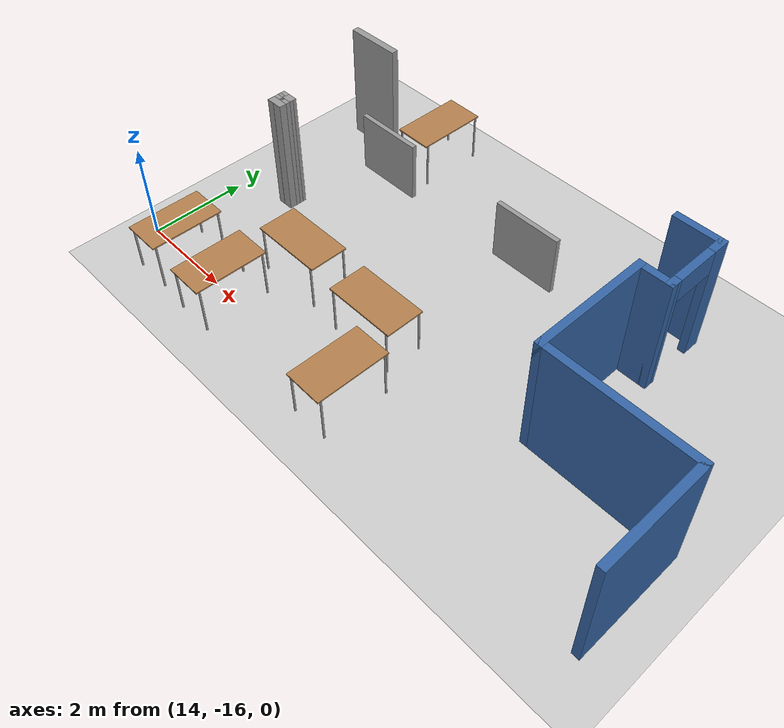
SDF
<sdf version="1.7">
 <world name="default">
  <model name="ground_plane">
   <static>1</static>
   <link name="link">
    <collision name="collision">
     <geometry><plane><normal>0 0 1</normal><size>100 100</size></plane></geometry>
     <surface>
      <contact><collide_bitmask>65535</collide_bitmask></contact>
      <friction><ode><mu>100</mu><mu2>50</mu2></ode></friction>
     </surface>
    </collision>
    <visual name="visual">
     <cast_shadows>0</cast_shadows>
     <geometry><plane><normal>0 0 1</normal><size>100 100</size></plane></geometry>
     <material>
      <script><uri>file://media/materials/scripts/gazebo.material</uri><name>Gazebo/Grey</name></script>
     </material>
    </visual>
   </link>
  </model>
  <model name="office_indoor_centered">
   <pose>8.45773 -9.64315 0 0 -0 0</pose>
   <link name="Wall_10">
    <collision name="Wall_10_Collision">
     <geometry><box><size>2.25 0.15 2.5</size></box></geometry>
     <pose>0 0 1.25 0 -0 0</pose>
    </collision>
    <visual name="Wall_10_Visual">
     <pose>0 0 1.25 0 -0 0</pose>
     <geometry><box><size>2.25 0.15 2.5</size></box></geometry>
     <material>
      <script><uri>file://media/materials/scripts/gazebo.material</uri><name>Gazebo/Grey</name></script>
      <ambient>0.203922 0.396078 0.643137 1</ambient>
     </material>
     <meta><layer>0</layer></meta>
    </visual>
    <pose>16.775 -5.85015 0 0 -0 -1.5708</pose>
   </link>
   <link name="Wall_107">
    <collision name="Wall_107_Collision">
     <geometry><box><size>0.391604 0.15 2.5</size></box></geometry>
     <pose>0 0 1.25 0 -0 0</pose>
    </collision>
    <visual name="Wall_107_Visual">
     <pose>0 0 1.25 0 -0 0</pose>
     <geometry><box><size>0.391604 0.15 2.5</size></box></geometry>
     <material>
      <script><uri>file://media/materials/scripts/gazebo.material</uri><name>Gazebo/Grey</name></script>
      <ambient>1 1 1 1</ambient>
     </material>
     <meta><layer>0</layer></meta>
    </visual>
    <pose>6.55713 -3.81389 0 0 -0 1.58855</pose>
   </link>
   <link name="Wall_108">
    <collision name="Wall_108_Collision">
     <geometry><box><size>0.352972 0.15 2.5</size></box></geometry>
     <pose>0 0 1.25 0 -0 0</pose>
    </collision>
    <visual name="Wall_108_Visual">
     <pose>0 0 1.25 0 -0 0</pose>
     <geometry><box><size>0.352972 0.15 2.5</size></box></geometry>
     <material>
      <script><uri>file://media/materials/scripts/gazebo.material</uri><name>Gazebo/Grey</name></script>
      <ambient>1 1 1 1</ambient>
     </material>
     <meta><layer>0</layer></meta>
    </visual>
    <pose>6.65648 -3.69239 0 0 -0 0.007042</pose>
   </link>
   <link name="Wall_109">
    <collision name="Wall_109_Collision">
     <geometry><box><size>0.388707 0.15 2.5</size></box></geometry>
     <pose>0 0 1.25 0 -0 0</pose>
    </collision>
    <visual name="Wall_109_Visual">
     <pose>0 0 1.25 0 -0 0</pose>
     <geometry><box><size>0.388707 0.15 2.5</size></box></geometry>
     <material>
      <script><uri>file://media/materials/scripts/gazebo.material</uri><name>Gazebo/Grey</name></script>
      <ambient>1 1 1 1</ambient>
     </material>
     <meta><layer>0</layer></meta>
    </visual>
    <pose>6.75796 -3.81103 0 0 -0 -1.5708</pose>
   </link>
   <link name="Wall_110">
    <collision name="Wall_110_Collision">
     <geometry><box><size>0.342967 0.15 2.5</size></box></geometry>
     <pose>0 0 1.25 0 -0 0</pose>
    </collision>
    <visual name="Wall_110_Visual">
     <pose>0 0 1.25 0 -0 0</pose>
     <geometry><box><size>0.342967 0.15 2.5</size></box></geometry>
     <material>
      <script><uri>file://media/materials/scripts/gazebo.material</uri><name>Gazebo/Grey</name></script>
      <ambient>1 1 1 1</ambient>
     </material>
     <meta><layer>0</layer></meta>
    </visual>
    <pose>6.66148 -3.93039 0 0 -0 3.14159</pose>
   </link>
   <link name="Wall_141">
    <collision name="Wall_141_Collision">
     <geometry><box><size>1.4496 0.1 1.3</size></box></geometry>
     <pose>0 0 0.65 0 -0 0</pose>
    </collision>
    <visual name="Wall_141_Visual">
     <pose>0 0 0.65 0 -0 0</pose>
     <geometry><box><size>1.4496 0.1 1.3</size></box></geometry>
     <material>
      <script><uri>file://media/materials/scripts/gazebo.material</uri><name>Gazebo/Grey</name></script>
      <ambient>1 1 1 1</ambient>
     </material>
     <meta><layer>0</layer></meta>
    </visual>
    <pose>11.2683 -1.93385 0 0 -0 3.14159</pose>
   </link>
   <link name="Wall_143">
    <collision name="Wall_143_Collision">
     <geometry><box><size>1.45037 0.1 1.3</size></box></geometry>
     <pose>0 0 0.65 0 -0 0</pose>
    </collision>
    <visual name="Wall_143_Visual">
     <pose>0 0 0.65 0 -0 0</pose>
     <geometry><box><size>1.45037 0.1 1.3</size></box></geometry>
     <material>
      <script><uri>file://media/materials/scripts/gazebo.material</uri><name>Gazebo/Grey</name></script>
      <ambient>1 1 1 1</ambient>
     </material>
     <meta><layer>0</layer></meta>
    </visual>
    <pose>7.57127 -1.94485 0 0 -0 0</pose>
   </link>
   <link name="Wall_5">
    <collision name="Wall_5_Collision">
     <geometry><box><size>1 0.15 2.5</size></box></geometry>
     <pose>0 0 1.25 0 -0 0</pose>
    </collision>
    <visual name="Wall_5_Visual">
     <pose>0 0 1.25 0 -0 0</pose>
     <geometry><box><size>1 0.15 2.5</size></box></geometry>
     <material>
      <script><uri>file://media/materials/scripts/gazebo.material</uri><name>Gazebo/Grey</name></script>
      <ambient>0.203922 0.396078 0.643137 1</ambient>
     </material>
     <meta><layer>0</layer></meta>
    </visual>
    <pose>14.1 -1.10015 0 0 -0 0</pose>
   </link>
   <link name="Wall_55">
    <collision name="Wall_55_Collision">
     <geometry><box><size>1.17933 0.15 2.5</size></box></geometry>
     <pose>0 0 1.25 0 -0 0</pose>
    </collision>
    <visual name="Wall_55_Visual">
     <pose>0 0 1.25 0 -0 0</pose>
     <geometry><box><size>1.17933 0.15 2.5</size></box></geometry>
     <material>
      <script><uri>file://media/materials/scripts/gazebo.material</uri><name>Gazebo/Grey</name></script>
      <ambient>1 1 1 1</ambient>
     </material>
     <meta><layer>0</layer></meta>
    </visual>
    <pose>6.36001 -1.19956 0 0 -0 0.005618</pose>
   </link>
   <link name="Wall_6">
    <pose>14.525 -1.77515 0 0 -0 -1.5708</pose>
    <visual name="Wall_6_Visual_0">
     <pose>-0.569607 0 1.25 0 -0 0</pose>
     <geometry><box><size>0.360786 0.15 2.5</size></box></geometry>
     <material>
      <script><uri>file://media/materials/scripts/gazebo.material</uri><name>Gazebo/Grey</name></script>
      <ambient>0.203922 0.396078 0.643137 1</ambient>
     </material>
     <meta><layer>0</layer></meta>
    </visual>
    <collision name="Wall_6_Collision_0">
     <geometry><box><size>0.360786 0.15 2.5</size></box></geometry>
     <pose>-0.569607 0 1.25 0 -0 0</pose>
    </collision>
    <visual name="Wall_6_Visual_1">
     <pose>0.630393 0 1.25 0 -0 0</pose>
     <geometry><box><size>0.239214 0.15 2.5</size></box></geometry>
     <material>
      <script><uri>file://media/materials/scripts/gazebo.material</uri><name>Gazebo/Grey</name></script>
      <ambient>0.203922 0.396078 0.643137 1</ambient>
     </material>
     <meta><layer>0</layer></meta>
    </visual>
    <collision name="Wall_6_Collision_1">
     <geometry><box><size>0.239214 0.15 2.5</size></box></geometry>
     <pose>0.630393 0 1.25 0 -0 0</pose>
    </collision>
    <visual name="Wall_6_Visual_2">
     <pose>0.060786 0 2.25 0 -0 0</pose>
     <geometry><box><size>0.9 0.15 0.5</size></box></geometry>
     <material>
      <script><uri>file://media/materials/scripts/gazebo.material</uri><name>Gazebo/Grey</name></script>
      <ambient>0.203922 0.396078 0.643137 1</ambient>
     </material>
     <meta><layer>0</layer></meta>
    </visual>
    <collision name="Wall_6_Collision_2">
     <geometry><box><size>0.9 0.15 0.5</size></box></geometry>
     <pose>0.060786 0 2.25 0 -0 0</pose>
    </collision>
   </link>
   <link name="Wall_7">
    <collision name="Wall_7_Collision">
     <geometry><box><size>0.75 0.15 2.5</size></box></geometry>
     <pose>0 0 1.25 0 -0 0</pose>
    </collision>
    <visual name="Wall_7_Visual">
     <pose>0 0 1.25 0 -0 0</pose>
     <geometry><box><size>0.75 0.15 2.5</size></box></geometry>
     <material>
      <script><uri>file://media/materials/scripts/gazebo.material</uri><name>Gazebo/Grey</name></script>
      <ambient>0.203922 0.396078 0.643137 1</ambient>
     </material>
     <meta><layer>0</layer></meta>
    </visual>
    <pose>14.225 -2.45015 0 0 -0 3.14159</pose>
   </link>
   <link name="Wall_8">
    <collision name="Wall_8_Collision">
     <geometry><box><size>2.5 0.15 2.5</size></box></geometry>
     <pose>0 0 1.25 0 -0 0</pose>
    </collision>
    <visual name="Wall_8_Visual">
     <pose>0 0 1.25 0 -0 0</pose>
     <geometry><box><size>2.5 0.15 2.5</size></box></geometry>
     <material>
      <script><uri>file://media/materials/scripts/gazebo.material</uri><name>Gazebo/Grey</name></script>
      <ambient>0.203922 0.396078 0.643137 1</ambient>
     </material>
     <meta><layer>0</layer></meta>
    </visual>
    <pose>13.925 -3.62515 0 0 -0 -1.5708</pose>
   </link>
   <link name="Wall_9">
    <collision name="Wall_9_Collision">
     <geometry><box><size>3 0.15 2.5</size></box></geometry>
     <pose>0 0 1.25 0 -0 0</pose>
    </collision>
    <visual name="Wall_9_Visual">
     <pose>0 0 1.25 0 -0 0</pose>
     <geometry><box><size>3 0.15 2.5</size></box></geometry>
     <material>
      <script><uri>file://media/materials/scripts/gazebo.material</uri><name>Gazebo/Grey</name></script>
      <ambient>0.203922 0.396078 0.643137 1</ambient>
     </material>
     <meta><layer>0</layer></meta>
    </visual>
    <pose>15.35 -4.80015 0 0 -0 0</pose>
   </link>
   <static>1</static>
  </model>
  <model name="table_10">
   <static>1</static>
   <link name="link">
    <collision name="surface">
     <pose>0 0 1 0 -0 0</pose>
     <geometry><box><size>1.5 0.8 0.03</size></box></geometry>
     <surface><friction><ode><mu>0.6</mu><mu2>0.6</mu2></ode></friction></surface>
    </collision>
    <visual name="visual1">
     <pose>0 0 1 0 -0 0</pose>
     <geometry><box><size>1.5 0.8 0.03</size></box></geometry>
     <material>
      <script><uri>file://media/materials/scripts/gazebo.material</uri><name>Gazebo/Wood</name></script>
     </material>
    </visual>
    <collision name="collision_front_left_leg">
     <pose>0.68 0.38 0.5 0 -0 0</pose>
     <geometry><cylinder><radius>0.02</radius><length>1</length></cylinder></geometry>
    </collision>
    <visual name="visual_front_left_leg">
     <pose>0.68 0.38 0.5 0 -0 0</pose>
     <geometry><cylinder><radius>0.02</radius><length>1</length></cylinder></geometry>
     <material>
      <script><uri>file://media/materials/scripts/gazebo.material</uri><name>Gazebo/Grey</name></script>
     </material>
    </visual>
    <collision name="collision_front_right_leg">
     <pose>0.68 -0.38 0.5 0 -0 0</pose>
     <geometry><cylinder><radius>0.02</radius><length>1</length></cylinder></geometry>
    </collision>
    <visual name="visual_front_right_leg">
     <pose>0.68 -0.38 0.5 0 -0 0</pose>
     <geometry><cylinder><radius>0.02</radius><length>1</length></cylinder></geometry>
     <material>
      <script><uri>file://media/materials/scripts/gazebo.material</uri><name>Gazebo/Grey</name></script>
     </material>
    </visual>
    <collision name="collision_back_right_leg">
     <pose>-0.68 -0.38 0.5 0 -0 0</pose>
     <geometry><cylinder><radius>0.02</radius><length>1</length></cylinder></geometry>
    </collision>
    <visual name="visual_back_right_leg">
     <pose>-0.68 -0.38 0.5 0 -0 0</pose>
     <geometry><cylinder><radius>0.02</radius><length>1</length></cylinder></geometry>
     <material>
      <script><uri>file://media/materials/scripts/gazebo.material</uri><name>Gazebo/Grey</name></script>
     </material>
    </visual>
    <collision name="collision_back_left_leg">
     <pose>-0.68 0.38 0.5 0 -0 0</pose>
     <geometry><cylinder><radius>0.02</radius><length>1</length></cylinder></geometry>
    </collision>
    <visual name="visual_back_left_leg">
     <pose>-0.68 0.38 0.5 0 -0 0</pose>
     <geometry><cylinder><radius>0.02</radius><length>1</length></cylinder></geometry>
     <material>
      <script><uri>file://media/materials/scripts/gazebo.material</uri><name>Gazebo/Grey</name></script>
     </material>
    </visual>
   </link>
   <pose>17.0157 -14.6568 0 0 -0 0</pose>
  </model>
  <model name="table_11">
   <static>1</static>
   <link name="link">
    <collision name="surface">
     <pose>0 0 1 0 -0 0</pose>
     <geometry><box><size>1.5 0.8 0.03</size></box></geometry>
     <surface><friction><ode><mu>0.6</mu><mu2>0.6</mu2></ode></friction></surface>
    </collision>
    <visual name="visual1">
     <pose>0 0 1 0 -0 0</pose>
     <geometry><box><size>1.5 0.8 0.03</size></box></geometry>
     <material>
      <script><uri>file://media/materials/scripts/gazebo.material</uri><name>Gazebo/Wood</name></script>
     </material>
    </visual>
    <collision name="collision_front_left_leg">
     <pose>0.68 0.38 0.5 0 -0 0</pose>
     <geometry><cylinder><radius>0.02</radius><length>1</length></cylinder></geometry>
    </collision>
    <visual name="visual_front_left_leg">
     <pose>0.68 0.38 0.5 0 -0 0</pose>
     <geometry><cylinder><radius>0.02</radius><length>1</length></cylinder></geometry>
     <material>
      <script><uri>file://media/materials/scripts/gazebo.material</uri><name>Gazebo/Grey</name></script>
     </material>
    </visual>
    <collision name="collision_front_right_leg">
     <pose>0.68 -0.38 0.5 0 -0 0</pose>
     <geometry><cylinder><radius>0.02</radius><length>1</length></cylinder></geometry>
    </collision>
    <visual name="visual_front_right_leg">
     <pose>0.68 -0.38 0.5 0 -0 0</pose>
     <geometry><cylinder><radius>0.02</radius><length>1</length></cylinder></geometry>
     <material>
      <script><uri>file://media/materials/scripts/gazebo.material</uri><name>Gazebo/Grey</name></script>
     </material>
    </visual>
    <collision name="collision_back_right_leg">
     <pose>-0.68 -0.38 0.5 0 -0 0</pose>
     <geometry><cylinder><radius>0.02</radius><length>1</length></cylinder></geometry>
    </collision>
    <visual name="visual_back_right_leg">
     <pose>-0.68 -0.38 0.5 0 -0 0</pose>
     <geometry><cylinder><radius>0.02</radius><length>1</length></cylinder></geometry>
     <material>
      <script><uri>file://media/materials/scripts/gazebo.material</uri><name>Gazebo/Grey</name></script>
     </material>
    </visual>
    <collision name="collision_back_left_leg">
     <pose>-0.68 0.38 0.5 0 -0 0</pose>
     <geometry><cylinder><radius>0.02</radius><length>1</length></cylinder></geometry>
    </collision>
    <visual name="visual_back_left_leg">
     <pose>-0.68 0.38 0.5 0 -0 0</pose>
     <geometry><cylinder><radius>0.02</radius><length>1</length></cylinder></geometry>
     <material>
      <script><uri>file://media/materials/scripts/gazebo.material</uri><name>Gazebo/Grey</name></script>
     </material>
    </visual>
   </link>
   <pose>19.0717 -14.7207 0 0 -0 0</pose>
  </model>
  <model name="table_26_clone_3">
   <static>1</static>
   <link name="link">
    <collision name="surface">
     <pose>0 0 1 0 -0 0</pose>
     <geometry><box><size>1.5 0.8 0.03</size></box></geometry>
     <surface><friction><ode><mu>0.6</mu><mu2>0.6</mu2></ode></friction></surface>
    </collision>
    <visual name="visual1">
     <pose>0 0 1 0 -0 0</pose>
     <geometry><box><size>1.5 0.8 0.03</size></box></geometry>
     <material>
      <script><uri>file://media/materials/scripts/gazebo.material</uri><name>Gazebo/Wood</name></script>
     </material>
    </visual>
    <collision name="collision_front_left_leg">
     <pose>0.68 0.38 0.5 0 -0 0</pose>
     <geometry><cylinder><radius>0.02</radius><length>1</length></cylinder></geometry>
    </collision>
    <visual name="visual_front_left_leg">
     <pose>0.68 0.38 0.5 0 -0 0</pose>
     <geometry><cylinder><radius>0.02</radius><length>1</length></cylinder></geometry>
     <material>
      <script><uri>file://media/materials/scripts/gazebo.material</uri><name>Gazebo/Grey</name></script>
     </material>
    </visual>
    <collision name="collision_front_right_leg">
     <pose>0.68 -0.38 0.5 0 -0 0</pose>
     <geometry><cylinder><radius>0.02</radius><length>1</length></cylinder></geometry>
    </collision>
    <visual name="visual_front_right_leg">
     <pose>0.68 -0.38 0.5 0 -0 0</pose>
     <geometry><cylinder><radius>0.02</radius><length>1</length></cylinder></geometry>
     <material>
      <script><uri>file://media/materials/scripts/gazebo.material</uri><name>Gazebo/Grey</name></script>
     </material>
    </visual>
    <collision name="collision_back_right_leg">
     <pose>-0.68 -0.38 0.5 0 -0 0</pose>
     <geometry><cylinder><radius>0.02</radius><length>1</length></cylinder></geometry>
    </collision>
    <visual name="visual_back_right_leg">
     <pose>-0.68 -0.38 0.5 0 -0 0</pose>
     <geometry><cylinder><radius>0.02</radius><length>1</length></cylinder></geometry>
     <material>
      <script><uri>file://media/materials/scripts/gazebo.material</uri><name>Gazebo/Grey</name></script>
     </material>
    </visual>
    <collision name="collision_back_left_leg">
     <pose>-0.68 0.38 0.5 0 -0 0</pose>
     <geometry><cylinder><radius>0.02</radius><length>1</length></cylinder></geometry>
    </collision>
    <visual name="visual_back_left_leg">
     <pose>-0.68 0.38 0.5 0 -0 0</pose>
     <geometry><cylinder><radius>0.02</radius><length>1</length></cylinder></geometry>
     <material>
      <script><uri>file://media/materials/scripts/gazebo.material</uri><name>Gazebo/Grey</name></script>
     </material>
    </visual>
   </link>
   <pose>16.27 -10.4153 0 0 0 -1.57974</pose>
  </model>
  <model name="table_26_clone_6">
   <static>1</static>
   <link name="link">
    <collision name="surface">
     <pose>0 0 1 0 -0 0</pose>
     <geometry><box><size>1.5 0.8 0.03</size></box></geometry>
     <surface><friction><ode><mu>0.6</mu><mu2>0.6</mu2></ode></friction></surface>
    </collision>
    <visual name="visual1">
     <pose>0 0 1 0 -0 0</pose>
     <geometry><box><size>1.5 0.8 0.03</size></box></geometry>
     <material>
      <script><uri>file://media/materials/scripts/gazebo.material</uri><name>Gazebo/Wood</name></script>
     </material>
    </visual>
    <collision name="collision_front_left_leg">
     <pose>0.68 0.38 0.5 0 -0 0</pose>
     <geometry><cylinder><radius>0.02</radius><length>1</length></cylinder></geometry>
    </collision>
    <visual name="visual_front_left_leg">
     <pose>0.68 0.38 0.5 0 -0 0</pose>
     <geometry><cylinder><radius>0.02</radius><length>1</length></cylinder></geometry>
     <material>
      <script><uri>file://media/materials/scripts/gazebo.material</uri><name>Gazebo/Grey</name></script>
     </material>
    </visual>
    <collision name="collision_front_right_leg">
     <pose>0.68 -0.38 0.5 0 -0 0</pose>
     <geometry><cylinder><radius>0.02</radius><length>1</length></cylinder></geometry>
    </collision>
    <visual name="visual_front_right_leg">
     <pose>0.68 -0.38 0.5 0 -0 0</pose>
     <geometry><cylinder><radius>0.02</radius><length>1</length></cylinder></geometry>
     <material>
      <script><uri>file://media/materials/scripts/gazebo.material</uri><name>Gazebo/Grey</name></script>
     </material>
    </visual>
    <collision name="collision_back_right_leg">
     <pose>-0.68 -0.38 0.5 0 -0 0</pose>
     <geometry><cylinder><radius>0.02</radius><length>1</length></cylinder></geometry>
    </collision>
    <visual name="visual_back_right_leg">
     <pose>-0.68 -0.38 0.5 0 -0 0</pose>
     <geometry><cylinder><radius>0.02</radius><length>1</length></cylinder></geometry>
     <material>
      <script><uri>file://media/materials/scripts/gazebo.material</uri><name>Gazebo/Grey</name></script>
     </material>
    </visual>
    <collision name="collision_back_left_leg">
     <pose>-0.68 0.38 0.5 0 -0 0</pose>
     <geometry><cylinder><radius>0.02</radius><length>1</length></cylinder></geometry>
    </collision>
    <visual name="visual_back_left_leg">
     <pose>-0.68 0.38 0.5 0 -0 0</pose>
     <geometry><cylinder><radius>0.02</radius><length>1</length></cylinder></geometry>
     <material>
      <script><uri>file://media/materials/scripts/gazebo.material</uri><name>Gazebo/Grey</name></script>
     </material>
    </visual>
   </link>
   <pose>19.6908 -16.0998 0 0 0 -1.57974</pose>
  </model>
  <model name="table_26_clone_9">
   <static>1</static>
   <link name="link">
    <collision name="surface">
     <pose>0 0 1 0 -0 0</pose>
     <geometry><box><size>1.5 0.8 0.03</size></box></geometry>
     <surface><friction><ode><mu>0.6</mu><mu2>0.6</mu2></ode></friction></surface>
    </collision>
    <visual name="visual1">
     <pose>0 0 1 0 -0 0</pose>
     <geometry><box><size>1.5 0.8 0.03</size></box></geometry>
     <material>
      <script><uri>file://media/materials/scripts/gazebo.material</uri><name>Gazebo/Wood</name></script>
     </material>
    </visual>
    <collision name="collision_front_left_leg">
     <pose>0.68 0.38 0.5 0 -0 0</pose>
     <geometry><cylinder><radius>0.02</radius><length>1</length></cylinder></geometry>
    </collision>
    <visual name="visual_front_left_leg">
     <pose>0.68 0.38 0.5 0 -0 0</pose>
     <geometry><cylinder><radius>0.02</radius><length>1</length></cylinder></geometry>
     <material>
      <script><uri>file://media/materials/scripts/gazebo.material</uri><name>Gazebo/Grey</name></script>
     </material>
    </visual>
    <collision name="collision_front_right_leg">
     <pose>0.68 -0.38 0.5 0 -0 0</pose>
     <geometry><cylinder><radius>0.02</radius><length>1</length></cylinder></geometry>
    </collision>
    <visual name="visual_front_right_leg">
     <pose>0.68 -0.38 0.5 0 -0 0</pose>
     <geometry><cylinder><radius>0.02</radius><length>1</length></cylinder></geometry>
     <material>
      <script><uri>file://media/materials/scripts/gazebo.material</uri><name>Gazebo/Grey</name></script>
     </material>
    </visual>
    <collision name="collision_back_right_leg">
     <pose>-0.68 -0.38 0.5 0 -0 0</pose>
     <geometry><cylinder><radius>0.02</radius><length>1</length></cylinder></geometry>
    </collision>
    <visual name="visual_back_right_leg">
     <pose>-0.68 -0.38 0.5 0 -0 0</pose>
     <geometry><cylinder><radius>0.02</radius><length>1</length></cylinder></geometry>
     <material>
      <script><uri>file://media/materials/scripts/gazebo.material</uri><name>Gazebo/Grey</name></script>
     </material>
    </visual>
    <collision name="collision_back_left_leg">
     <pose>-0.68 0.38 0.5 0 -0 0</pose>
     <geometry><cylinder><radius>0.02</radius><length>1</length></cylinder></geometry>
    </collision>
    <visual name="visual_back_left_leg">
     <pose>-0.68 0.38 0.5 0 -0 0</pose>
     <geometry><cylinder><radius>0.02</radius><length>1</length></cylinder></geometry>
     <material>
      <script><uri>file://media/materials/scripts/gazebo.material</uri><name>Gazebo/Grey</name></script>
     </material>
    </visual>
   </link>
   <pose>16.4412 -16.1164 0 0 0 -1.57974</pose>
  </model>
  <model name="table_26_clone_10">
   <static>1</static>
   <link name="link">
    <collision name="surface">
     <pose>0 0 1 0 -0 0</pose>
     <geometry><box><size>1.5 0.8 0.03</size></box></geometry>
     <surface><friction><ode><mu>0.6</mu><mu2>0.6</mu2></ode></friction></surface>
    </collision>
    <visual name="visual1">
     <pose>0 0 1 0 -0 0</pose>
     <geometry><box><size>1.5 0.8 0.03</size></box></geometry>
     <material>
      <script><uri>file://media/materials/scripts/gazebo.material</uri><name>Gazebo/Wood</name></script>
     </material>
    </visual>
    <collision name="collision_front_left_leg">
     <pose>0.68 0.38 0.5 0 -0 0</pose>
     <geometry><cylinder><radius>0.02</radius><length>1</length></cylinder></geometry>
    </collision>
    <visual name="visual_front_left_leg">
     <pose>0.68 0.38 0.5 0 -0 0</pose>
     <geometry><cylinder><radius>0.02</radius><length>1</length></cylinder></geometry>
     <material>
      <script><uri>file://media/materials/scripts/gazebo.material</uri><name>Gazebo/Grey</name></script>
     </material>
    </visual>
    <collision name="collision_front_right_leg">
     <pose>0.68 -0.38 0.5 0 -0 0</pose>
     <geometry><cylinder><radius>0.02</radius><length>1</length></cylinder></geometry>
    </collision>
    <visual name="visual_front_right_leg">
     <pose>0.68 -0.38 0.5 0 -0 0</pose>
     <geometry><cylinder><radius>0.02</radius><length>1</length></cylinder></geometry>
     <material>
      <script><uri>file://media/materials/scripts/gazebo.material</uri><name>Gazebo/Grey</name></script>
     </material>
    </visual>
    <collision name="collision_back_right_leg">
     <pose>-0.68 -0.38 0.5 0 -0 0</pose>
     <geometry><cylinder><radius>0.02</radius><length>1</length></cylinder></geometry>
    </collision>
    <visual name="visual_back_right_leg">
     <pose>-0.68 -0.38 0.5 0 -0 0</pose>
     <geometry><cylinder><radius>0.02</radius><length>1</length></cylinder></geometry>
     <material>
      <script><uri>file://media/materials/scripts/gazebo.material</uri><name>Gazebo/Grey</name></script>
     </material>
    </visual>
    <collision name="collision_back_left_leg">
     <pose>-0.68 0.38 0.5 0 -0 0</pose>
     <geometry><cylinder><radius>0.02</radius><length>1</length></cylinder></geometry>
    </collision>
    <visual name="visual_back_left_leg">
     <pose>-0.68 0.38 0.5 0 -0 0</pose>
     <geometry><cylinder><radius>0.02</radius><length>1</length></cylinder></geometry>
     <material>
      <script><uri>file://media/materials/scripts/gazebo.material</uri><name>Gazebo/Grey</name></script>
     </material>
    </visual>
   </link>
   <pose>14.9932 -16.0495 0 0 0 -1.57974</pose>
  </model>
 </world>
</sdf>
